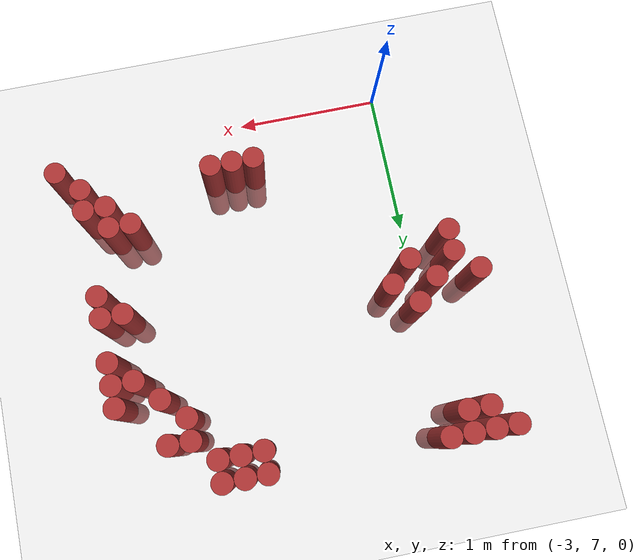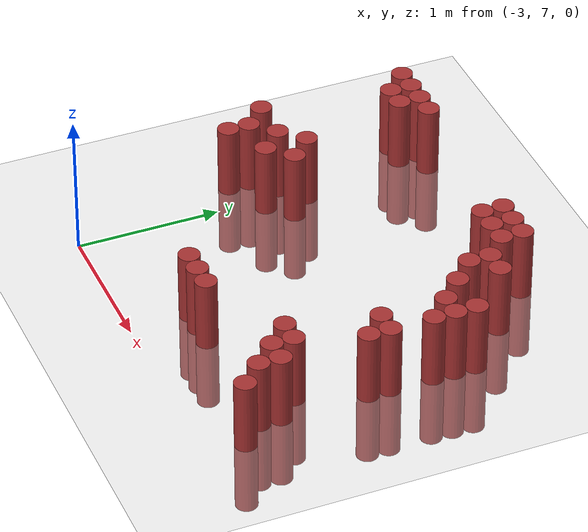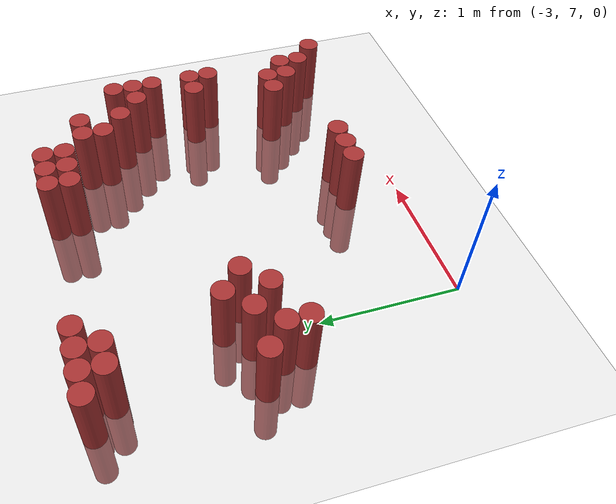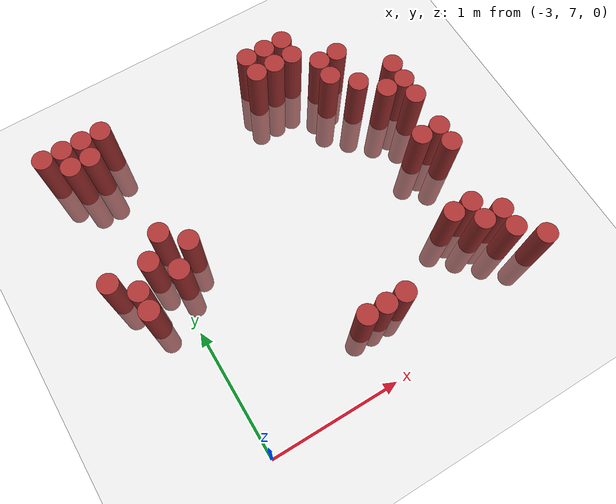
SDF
<sdf version="1.6">
 <world name="default">
  <model name="ground_plane">
   <static>1</static>
   <link name="link">
    <collision name="collision">
     <geometry><plane><normal>0 0 1</normal><size>100 100</size></plane></geometry>
     <surface><friction><ode><mu>100</mu><mu2>50</mu2></ode></friction></surface>
    </collision>
    <visual name="visual">
     <cast_shadows>0</cast_shadows>
     <geometry><plane><normal>0 0 1</normal><size>100 100</size></plane></geometry>
     <material>
      <script><uri>file://media/materials/scripts/gazebo.material</uri><name>Gazebo/Grey</name></script>
     </material>
    </visual>
   </link>
  </model>
  <model name="unit_cylinder_200">
   <static>1</static>
   <pose>-3.375000 8.475000 0.000000 0.000000 0.000000 0.000000</pose>
   <link name="link">
    <inertial>
     <mass>1</mass>
     <inertia><ixx>0.145833</ixx><ixy>0</ixy><ixz>0</ixz><iyy>0.145833</iyy><iyz>0</iyz><izz>0.125</izz></inertia>
    </inertial>
    <collision name="collision">
     <geometry><cylinder><radius>0.075000</radius><length>1</length></cylinder></geometry>
    </collision>
    <visual name="visual">
     <geometry><cylinder><radius>0.075000</radius><length>1</length></cylinder></geometry>
     <material>
      <ambient>0.648000 0.192000 0.192000 1</ambient>
      <diffuse>0.648000 0.192000 0.192000 1</diffuse>
     </material>
     <material>
      <script><name>Gazebo/Grey</name><uri>file://media/materials/scripts/gazebo.material</uri></script>
     </material>
    </visual>
    <sensor name="sensor_contact" type="contact"><contact><collision>collision</collision></contact></sensor>
   </link>
   <plugin filename="gz-sim-touchplugin-system" name="gz::sim::systems::TouchPlugin">
    <target>robot</target>
    <namespace>robot</namespace>
    <time>0.001</time>
    <enabled>true</enabled>
   </plugin>
  </model>
  <model name="unit_cylinder_201">
   <static>1</static>
   <pose>-3.375000 9.525000 0.000000 0.000000 0.000000 0.000000</pose>
   <link name="link">
    <inertial>
     <mass>1</mass>
     <inertia><ixx>0.145833</ixx><ixy>0</ixy><ixz>0</ixz><iyy>0.145833</iyy><iyz>0</iyz><izz>0.125</izz></inertia>
    </inertial>
    <collision name="collision">
     <geometry><cylinder><radius>0.075000</radius><length>1</length></cylinder></geometry>
    </collision>
    <visual name="visual">
     <geometry><cylinder><radius>0.075000</radius><length>1</length></cylinder></geometry>
     <material>
      <ambient>0.648000 0.192000 0.192000 1</ambient>
      <diffuse>0.648000 0.192000 0.192000 1</diffuse>
     </material>
     <material>
      <script><name>Gazebo/Grey</name><uri>file://media/materials/scripts/gazebo.material</uri></script>
     </material>
    </visual>
    <sensor name="sensor_contact" type="contact"><contact><collision>collision</collision></contact></sensor>
   </link>
   <plugin filename="gz-sim-touchplugin-system" name="gz::sim::systems::TouchPlugin">
    <target>robot</target>
    <namespace>robot</namespace>
    <time>0.001</time>
    <enabled>true</enabled>
   </plugin>
  </model>
  <model name="unit_cylinder_203">
   <static>1</static>
   <pose>-3.225000 8.175000 0.000000 0.000000 0.000000 0.000000</pose>
   <link name="link">
    <inertial>
     <mass>1</mass>
     <inertia><ixx>0.145833</ixx><ixy>0</ixy><ixz>0</ixz><iyy>0.145833</iyy><iyz>0</iyz><izz>0.125</izz></inertia>
    </inertial>
    <collision name="collision">
     <geometry><cylinder><radius>0.075000</radius><length>1</length></cylinder></geometry>
    </collision>
    <visual name="visual">
     <geometry><cylinder><radius>0.075000</radius><length>1</length></cylinder></geometry>
     <material>
      <ambient>0.648000 0.192000 0.192000 1</ambient>
      <diffuse>0.648000 0.192000 0.192000 1</diffuse>
     </material>
     <material>
      <script><name>Gazebo/Grey</name><uri>file://media/materials/scripts/gazebo.material</uri></script>
     </material>
    </visual>
    <sensor name="sensor_contact" type="contact"><contact><collision>collision</collision></contact></sensor>
   </link>
   <plugin filename="gz-sim-touchplugin-system" name="gz::sim::systems::TouchPlugin">
    <target>robot</target>
    <namespace>robot</namespace>
    <time>0.001</time>
    <enabled>true</enabled>
   </plugin>
  </model>
  <model name="unit_cylinder_204">
   <static>1</static>
   <pose>-3.225000 8.325000 0.000000 0.000000 0.000000 0.000000</pose>
   <link name="link">
    <inertial>
     <mass>1</mass>
     <inertia><ixx>0.145833</ixx><ixy>0</ixy><ixz>0</ixz><iyy>0.145833</iyy><iyz>0</iyz><izz>0.125</izz></inertia>
    </inertial>
    <collision name="collision">
     <geometry><cylinder><radius>0.075000</radius><length>1</length></cylinder></geometry>
    </collision>
    <visual name="visual">
     <geometry><cylinder><radius>0.075000</radius><length>1</length></cylinder></geometry>
     <material>
      <ambient>0.648000 0.192000 0.192000 1</ambient>
      <diffuse>0.648000 0.192000 0.192000 1</diffuse>
     </material>
     <material>
      <script><name>Gazebo/Grey</name><uri>file://media/materials/scripts/gazebo.material</uri></script>
     </material>
    </visual>
    <sensor name="sensor_contact" type="contact"><contact><collision>collision</collision></contact></sensor>
   </link>
   <plugin filename="gz-sim-touchplugin-system" name="gz::sim::systems::TouchPlugin">
    <target>robot</target>
    <namespace>robot</namespace>
    <time>0.001</time>
    <enabled>true</enabled>
   </plugin>
  </model>
  <model name="unit_cylinder_205">
   <static>1</static>
   <pose>-3.225000 9.375000 0.000000 0.000000 0.000000 0.000000</pose>
   <link name="link">
    <inertial>
     <mass>1</mass>
     <inertia><ixx>0.145833</ixx><ixy>0</ixy><ixz>0</ixz><iyy>0.145833</iyy><iyz>0</iyz><izz>0.125</izz></inertia>
    </inertial>
    <collision name="collision">
     <geometry><cylinder><radius>0.075000</radius><length>1</length></cylinder></geometry>
    </collision>
    <visual name="visual">
     <geometry><cylinder><radius>0.075000</radius><length>1</length></cylinder></geometry>
     <material>
      <ambient>0.648000 0.192000 0.192000 1</ambient>
      <diffuse>0.648000 0.192000 0.192000 1</diffuse>
     </material>
     <material>
      <script><name>Gazebo/Grey</name><uri>file://media/materials/scripts/gazebo.material</uri></script>
     </material>
    </visual>
    <sensor name="sensor_contact" type="contact"><contact><collision>collision</collision></contact></sensor>
   </link>
   <plugin filename="gz-sim-touchplugin-system" name="gz::sim::systems::TouchPlugin">
    <target>robot</target>
    <namespace>robot</namespace>
    <time>0.001</time>
    <enabled>true</enabled>
   </plugin>
  </model>
  <model name="unit_cylinder_206">
   <static>1</static>
   <pose>-3.225000 9.525000 0.000000 0.000000 0.000000 0.000000</pose>
   <link name="link">
    <inertial>
     <mass>1</mass>
     <inertia><ixx>0.145833</ixx><ixy>0</ixy><ixz>0</ixz><iyy>0.145833</iyy><iyz>0</iyz><izz>0.125</izz></inertia>
    </inertial>
    <collision name="collision">
     <geometry><cylinder><radius>0.075000</radius><length>1</length></cylinder></geometry>
    </collision>
    <visual name="visual">
     <geometry><cylinder><radius>0.075000</radius><length>1</length></cylinder></geometry>
     <material>
      <ambient>0.648000 0.192000 0.192000 1</ambient>
      <diffuse>0.648000 0.192000 0.192000 1</diffuse>
     </material>
     <material>
      <script><name>Gazebo/Grey</name><uri>file://media/materials/scripts/gazebo.material</uri></script>
     </material>
    </visual>
    <sensor name="sensor_contact" type="contact"><contact><collision>collision</collision></contact></sensor>
   </link>
   <plugin filename="gz-sim-touchplugin-system" name="gz::sim::systems::TouchPlugin">
    <target>robot</target>
    <namespace>robot</namespace>
    <time>0.001</time>
    <enabled>true</enabled>
   </plugin>
  </model>
  <model name="unit_cylinder_207">
   <static>1</static>
   <pose>-3.075000 8.475000 0.000000 0.000000 0.000000 0.000000</pose>
   <link name="link">
    <inertial>
     <mass>1</mass>
     <inertia><ixx>0.145833</ixx><ixy>0</ixy><ixz>0</ixz><iyy>0.145833</iyy><iyz>0</iyz><izz>0.125</izz></inertia>
    </inertial>
    <collision name="collision">
     <geometry><cylinder><radius>0.075000</radius><length>1</length></cylinder></geometry>
    </collision>
    <visual name="visual">
     <geometry><cylinder><radius>0.075000</radius><length>1</length></cylinder></geometry>
     <material>
      <ambient>0.648000 0.192000 0.192000 1</ambient>
      <diffuse>0.648000 0.192000 0.192000 1</diffuse>
     </material>
     <material>
      <script><name>Gazebo/Grey</name><uri>file://media/materials/scripts/gazebo.material</uri></script>
     </material>
    </visual>
    <sensor name="sensor_contact" type="contact"><contact><collision>collision</collision></contact></sensor>
   </link>
   <plugin filename="gz-sim-touchplugin-system" name="gz::sim::systems::TouchPlugin">
    <target>robot</target>
    <namespace>robot</namespace>
    <time>0.001</time>
    <enabled>true</enabled>
   </plugin>
  </model>
  <model name="unit_cylinder_208">
   <static>1</static>
   <pose>-3.075000 9.375000 0.000000 0.000000 0.000000 0.000000</pose>
   <link name="link">
    <inertial>
     <mass>1</mass>
     <inertia><ixx>0.145833</ixx><ixy>0</ixy><ixz>0</ixz><iyy>0.145833</iyy><iyz>0</iyz><izz>0.125</izz></inertia>
    </inertial>
    <collision name="collision">
     <geometry><cylinder><radius>0.075000</radius><length>1</length></cylinder></geometry>
    </collision>
    <visual name="visual">
     <geometry><cylinder><radius>0.075000</radius><length>1</length></cylinder></geometry>
     <material>
      <ambient>0.648000 0.192000 0.192000 1</ambient>
      <diffuse>0.648000 0.192000 0.192000 1</diffuse>
     </material>
     <material>
      <script><name>Gazebo/Grey</name><uri>file://media/materials/scripts/gazebo.material</uri></script>
     </material>
    </visual>
    <sensor name="sensor_contact" type="contact"><contact><collision>collision</collision></contact></sensor>
   </link>
   <plugin filename="gz-sim-touchplugin-system" name="gz::sim::systems::TouchPlugin">
    <target>robot</target>
    <namespace>robot</namespace>
    <time>0.001</time>
    <enabled>true</enabled>
   </plugin>
  </model>
  <model name="unit_cylinder_209">
   <static>1</static>
   <pose>-3.075000 9.525000 0.000000 0.000000 0.000000 0.000000</pose>
   <link name="link">
    <inertial>
     <mass>1</mass>
     <inertia><ixx>0.145833</ixx><ixy>0</ixy><ixz>0</ixz><iyy>0.145833</iyy><iyz>0</iyz><izz>0.125</izz></inertia>
    </inertial>
    <collision name="collision">
     <geometry><cylinder><radius>0.075000</radius><length>1</length></cylinder></geometry>
    </collision>
    <visual name="visual">
     <geometry><cylinder><radius>0.075000</radius><length>1</length></cylinder></geometry>
     <material>
      <ambient>0.648000 0.192000 0.192000 1</ambient>
      <diffuse>0.648000 0.192000 0.192000 1</diffuse>
     </material>
     <material>
      <script><name>Gazebo/Grey</name><uri>file://media/materials/scripts/gazebo.material</uri></script>
     </material>
    </visual>
    <sensor name="sensor_contact" type="contact"><contact><collision>collision</collision></contact></sensor>
   </link>
   <plugin filename="gz-sim-touchplugin-system" name="gz::sim::systems::TouchPlugin">
    <target>robot</target>
    <namespace>robot</namespace>
    <time>0.001</time>
    <enabled>true</enabled>
   </plugin>
  </model>
  <model name="unit_cylinder_210">
   <static>1</static>
   <pose>-2.925000 8.325000 0.000000 0.000000 0.000000 0.000000</pose>
   <link name="link">
    <inertial>
     <mass>1</mass>
     <inertia><ixx>0.145833</ixx><ixy>0</ixy><ixz>0</ixz><iyy>0.145833</iyy><iyz>0</iyz><izz>0.125</izz></inertia>
    </inertial>
    <collision name="collision">
     <geometry><cylinder><radius>0.075000</radius><length>1</length></cylinder></geometry>
    </collision>
    <visual name="visual">
     <geometry><cylinder><radius>0.075000</radius><length>1</length></cylinder></geometry>
     <material>
      <ambient>0.648000 0.192000 0.192000 1</ambient>
      <diffuse>0.648000 0.192000 0.192000 1</diffuse>
     </material>
     <material>
      <script><name>Gazebo/Grey</name><uri>file://media/materials/scripts/gazebo.material</uri></script>
     </material>
    </visual>
    <sensor name="sensor_contact" type="contact"><contact><collision>collision</collision></contact></sensor>
   </link>
   <plugin filename="gz-sim-touchplugin-system" name="gz::sim::systems::TouchPlugin">
    <target>robot</target>
    <namespace>robot</namespace>
    <time>0.001</time>
    <enabled>true</enabled>
   </plugin>
  </model>
  <model name="unit_cylinder_211">
   <static>1</static>
   <pose>-2.925000 8.625000 0.000000 0.000000 0.000000 0.000000</pose>
   <link name="link">
    <inertial>
     <mass>1</mass>
     <inertia><ixx>0.145833</ixx><ixy>0</ixy><ixz>0</ixz><iyy>0.145833</iyy><iyz>0</iyz><izz>0.125</izz></inertia>
    </inertial>
    <collision name="collision">
     <geometry><cylinder><radius>0.075000</radius><length>1</length></cylinder></geometry>
    </collision>
    <visual name="visual">
     <geometry><cylinder><radius>0.075000</radius><length>1</length></cylinder></geometry>
     <material>
      <ambient>0.648000 0.192000 0.192000 1</ambient>
      <diffuse>0.648000 0.192000 0.192000 1</diffuse>
     </material>
     <material>
      <script><name>Gazebo/Grey</name><uri>file://media/materials/scripts/gazebo.material</uri></script>
     </material>
    </visual>
    <sensor name="sensor_contact" type="contact"><contact><collision>collision</collision></contact></sensor>
   </link>
   <plugin filename="gz-sim-touchplugin-system" name="gz::sim::systems::TouchPlugin">
    <target>robot</target>
    <namespace>robot</namespace>
    <time>0.001</time>
    <enabled>true</enabled>
   </plugin>
  </model>
  <model name="unit_cylinder_212">
   <static>1</static>
   <pose>-2.925000 9.525000 0.000000 0.000000 0.000000 0.000000</pose>
   <link name="link">
    <inertial>
     <mass>1</mass>
     <inertia><ixx>0.145833</ixx><ixy>0</ixy><ixz>0</ixz><iyy>0.145833</iyy><iyz>0</iyz><izz>0.125</izz></inertia>
    </inertial>
    <collision name="collision">
     <geometry><cylinder><radius>0.075000</radius><length>1</length></cylinder></geometry>
    </collision>
    <visual name="visual">
     <geometry><cylinder><radius>0.075000</radius><length>1</length></cylinder></geometry>
     <material>
      <ambient>0.648000 0.192000 0.192000 1</ambient>
      <diffuse>0.648000 0.192000 0.192000 1</diffuse>
     </material>
     <material>
      <script><name>Gazebo/Grey</name><uri>file://media/materials/scripts/gazebo.material</uri></script>
     </material>
    </visual>
    <sensor name="sensor_contact" type="contact"><contact><collision>collision</collision></contact></sensor>
   </link>
   <plugin filename="gz-sim-touchplugin-system" name="gz::sim::systems::TouchPlugin">
    <target>robot</target>
    <namespace>robot</namespace>
    <time>0.001</time>
    <enabled>true</enabled>
   </plugin>
  </model>
  <model name="unit_cylinder_213">
   <static>1</static>
   <pose>-2.775000 8.475000 0.000000 0.000000 0.000000 0.000000</pose>
   <link name="link">
    <inertial>
     <mass>1</mass>
     <inertia><ixx>0.145833</ixx><ixy>0</ixy><ixz>0</ixz><iyy>0.145833</iyy><iyz>0</iyz><izz>0.125</izz></inertia>
    </inertial>
    <collision name="collision">
     <geometry><cylinder><radius>0.075000</radius><length>1</length></cylinder></geometry>
    </collision>
    <visual name="visual">
     <geometry><cylinder><radius>0.075000</radius><length>1</length></cylinder></geometry>
     <material>
      <ambient>0.648000 0.192000 0.192000 1</ambient>
      <diffuse>0.648000 0.192000 0.192000 1</diffuse>
     </material>
     <material>
      <script><name>Gazebo/Grey</name><uri>file://media/materials/scripts/gazebo.material</uri></script>
     </material>
    </visual>
    <sensor name="sensor_contact" type="contact"><contact><collision>collision</collision></contact></sensor>
   </link>
   <plugin filename="gz-sim-touchplugin-system" name="gz::sim::systems::TouchPlugin">
    <target>robot</target>
    <namespace>robot</namespace>
    <time>0.001</time>
    <enabled>true</enabled>
   </plugin>
  </model>
  <model name="unit_cylinder_225">
   <static>1</static>
   <pose>-2.025000 7.425000 0.000000 0.000000 0.000000 0.000000</pose>
   <link name="link">
    <inertial>
     <mass>1</mass>
     <inertia><ixx>0.145833</ixx><ixy>0</ixy><ixz>0</ixz><iyy>0.145833</iyy><iyz>0</iyz><izz>0.125</izz></inertia>
    </inertial>
    <collision name="collision">
     <geometry><cylinder><radius>0.075000</radius><length>1</length></cylinder></geometry>
    </collision>
    <visual name="visual">
     <geometry><cylinder><radius>0.075000</radius><length>1</length></cylinder></geometry>
     <material>
      <ambient>0.648000 0.192000 0.192000 1</ambient>
      <diffuse>0.648000 0.192000 0.192000 1</diffuse>
     </material>
     <material>
      <script><name>Gazebo/Grey</name><uri>file://media/materials/scripts/gazebo.material</uri></script>
     </material>
    </visual>
    <sensor name="sensor_contact" type="contact"><contact><collision>collision</collision></contact></sensor>
   </link>
   <plugin filename="gz-sim-touchplugin-system" name="gz::sim::systems::TouchPlugin">
    <target>robot</target>
    <namespace>robot</namespace>
    <time>0.001</time>
    <enabled>true</enabled>
   </plugin>
  </model>
  <model name="unit_cylinder_230">
   <static>1</static>
   <pose>-1.875000 7.425000 0.000000 0.000000 0.000000 0.000000</pose>
   <link name="link">
    <inertial>
     <mass>1</mass>
     <inertia><ixx>0.145833</ixx><ixy>0</ixy><ixz>0</ixz><iyy>0.145833</iyy><iyz>0</iyz><izz>0.125</izz></inertia>
    </inertial>
    <collision name="collision">
     <geometry><cylinder><radius>0.075000</radius><length>1</length></cylinder></geometry>
    </collision>
    <visual name="visual">
     <geometry><cylinder><radius>0.075000</radius><length>1</length></cylinder></geometry>
     <material>
      <ambient>0.648000 0.192000 0.192000 1</ambient>
      <diffuse>0.648000 0.192000 0.192000 1</diffuse>
     </material>
     <material>
      <script><name>Gazebo/Grey</name><uri>file://media/materials/scripts/gazebo.material</uri></script>
     </material>
    </visual>
    <sensor name="sensor_contact" type="contact"><contact><collision>collision</collision></contact></sensor>
   </link>
   <plugin filename="gz-sim-touchplugin-system" name="gz::sim::systems::TouchPlugin">
    <target>robot</target>
    <namespace>robot</namespace>
    <time>0.001</time>
    <enabled>true</enabled>
   </plugin>
  </model>
  <model name="unit_cylinder_235">
   <static>1</static>
   <pose>-1.725000 7.425000 0.000000 0.000000 0.000000 0.000000</pose>
   <link name="link">
    <inertial>
     <mass>1</mass>
     <inertia><ixx>0.145833</ixx><ixy>0</ixy><ixz>0</ixz><iyy>0.145833</iyy><iyz>0</iyz><izz>0.125</izz></inertia>
    </inertial>
    <collision name="collision">
     <geometry><cylinder><radius>0.075000</radius><length>1</length></cylinder></geometry>
    </collision>
    <visual name="visual">
     <geometry><cylinder><radius>0.075000</radius><length>1</length></cylinder></geometry>
     <material>
      <ambient>0.648000 0.192000 0.192000 1</ambient>
      <diffuse>0.648000 0.192000 0.192000 1</diffuse>
     </material>
     <material>
      <script><name>Gazebo/Grey</name><uri>file://media/materials/scripts/gazebo.material</uri></script>
     </material>
    </visual>
    <sensor name="sensor_contact" type="contact"><contact><collision>collision</collision></contact></sensor>
   </link>
   <plugin filename="gz-sim-touchplugin-system" name="gz::sim::systems::TouchPlugin">
    <target>robot</target>
    <namespace>robot</namespace>
    <time>0.001</time>
    <enabled>true</enabled>
   </plugin>
  </model>
  <model name="unit_cylinder_236">
   <static>1</static>
   <pose>-1.725000 9.375000 0.000000 0.000000 0.000000 0.000000</pose>
   <link name="link">
    <inertial>
     <mass>1</mass>
     <inertia><ixx>0.145833</ixx><ixy>0</ixy><ixz>0</ixz><iyy>0.145833</iyy><iyz>0</iyz><izz>0.125</izz></inertia>
    </inertial>
    <collision name="collision">
     <geometry><cylinder><radius>0.075000</radius><length>1</length></cylinder></geometry>
    </collision>
    <visual name="visual">
     <geometry><cylinder><radius>0.075000</radius><length>1</length></cylinder></geometry>
     <material>
      <ambient>0.648000 0.192000 0.192000 1</ambient>
      <diffuse>0.648000 0.192000 0.192000 1</diffuse>
     </material>
     <material>
      <script><name>Gazebo/Grey</name><uri>file://media/materials/scripts/gazebo.material</uri></script>
     </material>
    </visual>
    <sensor name="sensor_contact" type="contact"><contact><collision>collision</collision></contact></sensor>
   </link>
   <plugin filename="gz-sim-touchplugin-system" name="gz::sim::systems::TouchPlugin">
    <target>robot</target>
    <namespace>robot</namespace>
    <time>0.001</time>
    <enabled>true</enabled>
   </plugin>
  </model>
  <model name="unit_cylinder_237">
   <static>1</static>
   <pose>-1.725000 9.525000 0.000000 0.000000 0.000000 0.000000</pose>
   <link name="link">
    <inertial>
     <mass>1</mass>
     <inertia><ixx>0.145833</ixx><ixy>0</ixy><ixz>0</ixz><iyy>0.145833</iyy><iyz>0</iyz><izz>0.125</izz></inertia>
    </inertial>
    <collision name="collision">
     <geometry><cylinder><radius>0.075000</radius><length>1</length></cylinder></geometry>
    </collision>
    <visual name="visual">
     <geometry><cylinder><radius>0.075000</radius><length>1</length></cylinder></geometry>
     <material>
      <ambient>0.648000 0.192000 0.192000 1</ambient>
      <diffuse>0.648000 0.192000 0.192000 1</diffuse>
     </material>
     <material>
      <script><name>Gazebo/Grey</name><uri>file://media/materials/scripts/gazebo.material</uri></script>
     </material>
    </visual>
    <sensor name="sensor_contact" type="contact"><contact><collision>collision</collision></contact></sensor>
   </link>
   <plugin filename="gz-sim-touchplugin-system" name="gz::sim::systems::TouchPlugin">
    <target>robot</target>
    <namespace>robot</namespace>
    <time>0.001</time>
    <enabled>true</enabled>
   </plugin>
  </model>
  <model name="unit_cylinder_241">
   <static>1</static>
   <pose>-1.575000 9.375000 0.000000 0.000000 0.000000 0.000000</pose>
   <link name="link">
    <inertial>
     <mass>1</mass>
     <inertia><ixx>0.145833</ixx><ixy>0</ixy><ixz>0</ixz><iyy>0.145833</iyy><iyz>0</iyz><izz>0.125</izz></inertia>
    </inertial>
    <collision name="collision">
     <geometry><cylinder><radius>0.075000</radius><length>1</length></cylinder></geometry>
    </collision>
    <visual name="visual">
     <geometry><cylinder><radius>0.075000</radius><length>1</length></cylinder></geometry>
     <material>
      <ambient>0.648000 0.192000 0.192000 1</ambient>
      <diffuse>0.648000 0.192000 0.192000 1</diffuse>
     </material>
     <material>
      <script><name>Gazebo/Grey</name><uri>file://media/materials/scripts/gazebo.material</uri></script>
     </material>
    </visual>
    <sensor name="sensor_contact" type="contact"><contact><collision>collision</collision></contact></sensor>
   </link>
   <plugin filename="gz-sim-touchplugin-system" name="gz::sim::systems::TouchPlugin">
    <target>robot</target>
    <namespace>robot</namespace>
    <time>0.001</time>
    <enabled>true</enabled>
   </plugin>
  </model>
  <model name="unit_cylinder_242">
   <static>1</static>
   <pose>-1.575000 9.525000 0.000000 0.000000 0.000000 0.000000</pose>
   <link name="link">
    <inertial>
     <mass>1</mass>
     <inertia><ixx>0.145833</ixx><ixy>0</ixy><ixz>0</ixz><iyy>0.145833</iyy><iyz>0</iyz><izz>0.125</izz></inertia>
    </inertial>
    <collision name="collision">
     <geometry><cylinder><radius>0.075000</radius><length>1</length></cylinder></geometry>
    </collision>
    <visual name="visual">
     <geometry><cylinder><radius>0.075000</radius><length>1</length></cylinder></geometry>
     <material>
      <ambient>0.648000 0.192000 0.192000 1</ambient>
      <diffuse>0.648000 0.192000 0.192000 1</diffuse>
     </material>
     <material>
      <script><name>Gazebo/Grey</name><uri>file://media/materials/scripts/gazebo.material</uri></script>
     </material>
    </visual>
    <sensor name="sensor_contact" type="contact"><contact><collision>collision</collision></contact></sensor>
   </link>
   <plugin filename="gz-sim-touchplugin-system" name="gz::sim::systems::TouchPlugin">
    <target>robot</target>
    <namespace>robot</namespace>
    <time>0.001</time>
    <enabled>true</enabled>
   </plugin>
  </model>
  <model name="unit_cylinder_246">
   <static>1</static>
   <pose>-1.425000 9.375000 0.000000 0.000000 0.000000 0.000000</pose>
   <link name="link">
    <inertial>
     <mass>1</mass>
     <inertia><ixx>0.145833</ixx><ixy>0</ixy><ixz>0</ixz><iyy>0.145833</iyy><iyz>0</iyz><izz>0.125</izz></inertia>
    </inertial>
    <collision name="collision">
     <geometry><cylinder><radius>0.075000</radius><length>1</length></cylinder></geometry>
    </collision>
    <visual name="visual">
     <geometry><cylinder><radius>0.075000</radius><length>1</length></cylinder></geometry>
     <material>
      <ambient>0.648000 0.192000 0.192000 1</ambient>
      <diffuse>0.648000 0.192000 0.192000 1</diffuse>
     </material>
     <material>
      <script><name>Gazebo/Grey</name><uri>file://media/materials/scripts/gazebo.material</uri></script>
     </material>
    </visual>
    <sensor name="sensor_contact" type="contact"><contact><collision>collision</collision></contact></sensor>
   </link>
   <plugin filename="gz-sim-touchplugin-system" name="gz::sim::systems::TouchPlugin">
    <target>robot</target>
    <namespace>robot</namespace>
    <time>0.001</time>
    <enabled>true</enabled>
   </plugin>
  </model>
  <model name="unit_cylinder_247">
   <static>1</static>
   <pose>-1.425000 9.525000 0.000000 0.000000 0.000000 0.000000</pose>
   <link name="link">
    <inertial>
     <mass>1</mass>
     <inertia><ixx>0.145833</ixx><ixy>0</ixy><ixz>0</ixz><iyy>0.145833</iyy><iyz>0</iyz><izz>0.125</izz></inertia>
    </inertial>
    <collision name="collision">
     <geometry><cylinder><radius>0.075000</radius><length>1</length></cylinder></geometry>
    </collision>
    <visual name="visual">
     <geometry><cylinder><radius>0.075000</radius><length>1</length></cylinder></geometry>
     <material>
      <ambient>0.648000 0.192000 0.192000 1</ambient>
      <diffuse>0.648000 0.192000 0.192000 1</diffuse>
     </material>
     <material>
      <script><name>Gazebo/Grey</name><uri>file://media/materials/scripts/gazebo.material</uri></script>
     </material>
    </visual>
    <sensor name="sensor_contact" type="contact"><contact><collision>collision</collision></contact></sensor>
   </link>
   <plugin filename="gz-sim-touchplugin-system" name="gz::sim::systems::TouchPlugin">
    <target>robot</target>
    <namespace>robot</namespace>
    <time>0.001</time>
    <enabled>true</enabled>
   </plugin>
  </model>
  <model name="unit_cylinder_251">
   <static>1</static>
   <pose>-1.275000 9.075000 0.000000 0.000000 0.000000 0.000000</pose>
   <link name="link">
    <inertial>
     <mass>1</mass>
     <inertia><ixx>0.145833</ixx><ixy>0</ixy><ixz>0</ixz><iyy>0.145833</iyy><iyz>0</iyz><izz>0.125</izz></inertia>
    </inertial>
    <collision name="collision">
     <geometry><cylinder><radius>0.075000</radius><length>1</length></cylinder></geometry>
    </collision>
    <visual name="visual">
     <geometry><cylinder><radius>0.075000</radius><length>1</length></cylinder></geometry>
     <material>
      <ambient>0.648000 0.192000 0.192000 1</ambient>
      <diffuse>0.648000 0.192000 0.192000 1</diffuse>
     </material>
     <material>
      <script><name>Gazebo/Grey</name><uri>file://media/materials/scripts/gazebo.material</uri></script>
     </material>
    </visual>
    <sensor name="sensor_contact" type="contact"><contact><collision>collision</collision></contact></sensor>
   </link>
   <plugin filename="gz-sim-touchplugin-system" name="gz::sim::systems::TouchPlugin">
    <target>robot</target>
    <namespace>robot</namespace>
    <time>0.001</time>
    <enabled>true</enabled>
   </plugin>
  </model>
  <model name="unit_cylinder_252">
   <static>1</static>
   <pose>-1.275000 9.225000 0.000000 0.000000 0.000000 0.000000</pose>
   <link name="link">
    <inertial>
     <mass>1</mass>
     <inertia><ixx>0.145833</ixx><ixy>0</ixy><ixz>0</ixz><iyy>0.145833</iyy><iyz>0</iyz><izz>0.125</izz></inertia>
    </inertial>
    <collision name="collision">
     <geometry><cylinder><radius>0.075000</radius><length>1</length></cylinder></geometry>
    </collision>
    <visual name="visual">
     <geometry><cylinder><radius>0.075000</radius><length>1</length></cylinder></geometry>
     <material>
      <ambient>0.648000 0.192000 0.192000 1</ambient>
      <diffuse>0.648000 0.192000 0.192000 1</diffuse>
     </material>
     <material>
      <script><name>Gazebo/Grey</name><uri>file://media/materials/scripts/gazebo.material</uri></script>
     </material>
    </visual>
    <sensor name="sensor_contact" type="contact"><contact><collision>collision</collision></contact></sensor>
   </link>
   <plugin filename="gz-sim-touchplugin-system" name="gz::sim::systems::TouchPlugin">
    <target>robot</target>
    <namespace>robot</namespace>
    <time>0.001</time>
    <enabled>true</enabled>
   </plugin>
  </model>
  <model name="unit_cylinder_254">
   <static>1</static>
   <pose>-1.125000 7.725000 0.000000 0.000000 0.000000 0.000000</pose>
   <link name="link">
    <inertial>
     <mass>1</mass>
     <inertia><ixx>0.145833</ixx><ixy>0</ixy><ixz>0</ixz><iyy>0.145833</iyy><iyz>0</iyz><izz>0.125</izz></inertia>
    </inertial>
    <collision name="collision">
     <geometry><cylinder><radius>0.075000</radius><length>1</length></cylinder></geometry>
    </collision>
    <visual name="visual">
     <geometry><cylinder><radius>0.075000</radius><length>1</length></cylinder></geometry>
     <material>
      <ambient>0.648000 0.192000 0.192000 1</ambient>
      <diffuse>0.648000 0.192000 0.192000 1</diffuse>
     </material>
     <material>
      <script><name>Gazebo/Grey</name><uri>file://media/materials/scripts/gazebo.material</uri></script>
     </material>
    </visual>
    <sensor name="sensor_contact" type="contact"><contact><collision>collision</collision></contact></sensor>
   </link>
   <plugin filename="gz-sim-touchplugin-system" name="gz::sim::systems::TouchPlugin">
    <target>robot</target>
    <namespace>robot</namespace>
    <time>0.001</time>
    <enabled>true</enabled>
   </plugin>
  </model>
  <model name="unit_cylinder_255">
   <static>1</static>
   <pose>-1.125000 8.925000 0.000000 0.000000 0.000000 0.000000</pose>
   <link name="link">
    <inertial>
     <mass>1</mass>
     <inertia><ixx>0.145833</ixx><ixy>0</ixy><ixz>0</ixz><iyy>0.145833</iyy><iyz>0</iyz><izz>0.125</izz></inertia>
    </inertial>
    <collision name="collision">
     <geometry><cylinder><radius>0.075000</radius><length>1</length></cylinder></geometry>
    </collision>
    <visual name="visual">
     <geometry><cylinder><radius>0.075000</radius><length>1</length></cylinder></geometry>
     <material>
      <ambient>0.648000 0.192000 0.192000 1</ambient>
      <diffuse>0.648000 0.192000 0.192000 1</diffuse>
     </material>
     <material>
      <script><name>Gazebo/Grey</name><uri>file://media/materials/scripts/gazebo.material</uri></script>
     </material>
    </visual>
    <sensor name="sensor_contact" type="contact"><contact><collision>collision</collision></contact></sensor>
   </link>
   <plugin filename="gz-sim-touchplugin-system" name="gz::sim::systems::TouchPlugin">
    <target>robot</target>
    <namespace>robot</namespace>
    <time>0.001</time>
    <enabled>true</enabled>
   </plugin>
  </model>
  <model name="unit_cylinder_256">
   <static>1</static>
   <pose>-1.125000 9.225000 0.000000 0.000000 0.000000 0.000000</pose>
   <link name="link">
    <inertial>
     <mass>1</mass>
     <inertia><ixx>0.145833</ixx><ixy>0</ixy><ixz>0</ixz><iyy>0.145833</iyy><iyz>0</iyz><izz>0.125</izz></inertia>
    </inertial>
    <collision name="collision">
     <geometry><cylinder><radius>0.075000</radius><length>1</length></cylinder></geometry>
    </collision>
    <visual name="visual">
     <geometry><cylinder><radius>0.075000</radius><length>1</length></cylinder></geometry>
     <material>
      <ambient>0.648000 0.192000 0.192000 1</ambient>
      <diffuse>0.648000 0.192000 0.192000 1</diffuse>
     </material>
     <material>
      <script><name>Gazebo/Grey</name><uri>file://media/materials/scripts/gazebo.material</uri></script>
     </material>
    </visual>
    <sensor name="sensor_contact" type="contact"><contact><collision>collision</collision></contact></sensor>
   </link>
   <plugin filename="gz-sim-touchplugin-system" name="gz::sim::systems::TouchPlugin">
    <target>robot</target>
    <namespace>robot</namespace>
    <time>0.001</time>
    <enabled>true</enabled>
   </plugin>
  </model>
  <model name="unit_cylinder_259">
   <static>1</static>
   <pose>-0.975000 7.575000 0.000000 0.000000 0.000000 0.000000</pose>
   <link name="link">
    <inertial>
     <mass>1</mass>
     <inertia><ixx>0.145833</ixx><ixy>0</ixy><ixz>0</ixz><iyy>0.145833</iyy><iyz>0</iyz><izz>0.125</izz></inertia>
    </inertial>
    <collision name="collision">
     <geometry><cylinder><radius>0.075000</radius><length>1</length></cylinder></geometry>
    </collision>
    <visual name="visual">
     <geometry><cylinder><radius>0.075000</radius><length>1</length></cylinder></geometry>
     <material>
      <ambient>0.648000 0.192000 0.192000 1</ambient>
      <diffuse>0.648000 0.192000 0.192000 1</diffuse>
     </material>
     <material>
      <script><name>Gazebo/Grey</name><uri>file://media/materials/scripts/gazebo.material</uri></script>
     </material>
    </visual>
    <sensor name="sensor_contact" type="contact"><contact><collision>collision</collision></contact></sensor>
   </link>
   <plugin filename="gz-sim-touchplugin-system" name="gz::sim::systems::TouchPlugin">
    <target>robot</target>
    <namespace>robot</namespace>
    <time>0.001</time>
    <enabled>true</enabled>
   </plugin>
  </model>
  <model name="unit_cylinder_260">
   <static>1</static>
   <pose>-0.975000 7.725000 0.000000 0.000000 0.000000 0.000000</pose>
   <link name="link">
    <inertial>
     <mass>1</mass>
     <inertia><ixx>0.145833</ixx><ixy>0</ixy><ixz>0</ixz><iyy>0.145833</iyy><iyz>0</iyz><izz>0.125</izz></inertia>
    </inertial>
    <collision name="collision">
     <geometry><cylinder><radius>0.075000</radius><length>1</length></cylinder></geometry>
    </collision>
    <visual name="visual">
     <geometry><cylinder><radius>0.075000</radius><length>1</length></cylinder></geometry>
     <material>
      <ambient>0.648000 0.192000 0.192000 1</ambient>
      <diffuse>0.648000 0.192000 0.192000 1</diffuse>
     </material>
     <material>
      <script><name>Gazebo/Grey</name><uri>file://media/materials/scripts/gazebo.material</uri></script>
     </material>
    </visual>
    <sensor name="sensor_contact" type="contact"><contact><collision>collision</collision></contact></sensor>
   </link>
   <plugin filename="gz-sim-touchplugin-system" name="gz::sim::systems::TouchPlugin">
    <target>robot</target>
    <namespace>robot</namespace>
    <time>0.001</time>
    <enabled>true</enabled>
   </plugin>
  </model>
  <model name="unit_cylinder_261">
   <static>1</static>
   <pose>-0.975000 8.325000 0.000000 0.000000 0.000000 0.000000</pose>
   <link name="link">
    <inertial>
     <mass>1</mass>
     <inertia><ixx>0.145833</ixx><ixy>0</ixy><ixz>0</ixz><iyy>0.145833</iyy><iyz>0</iyz><izz>0.125</izz></inertia>
    </inertial>
    <collision name="collision">
     <geometry><cylinder><radius>0.075000</radius><length>1</length></cylinder></geometry>
    </collision>
    <visual name="visual">
     <geometry><cylinder><radius>0.075000</radius><length>1</length></cylinder></geometry>
     <material>
      <ambient>0.648000 0.192000 0.192000 1</ambient>
      <diffuse>0.648000 0.192000 0.192000 1</diffuse>
     </material>
     <material>
      <script><name>Gazebo/Grey</name><uri>file://media/materials/scripts/gazebo.material</uri></script>
     </material>
    </visual>
    <sensor name="sensor_contact" type="contact"><contact><collision>collision</collision></contact></sensor>
   </link>
   <plugin filename="gz-sim-touchplugin-system" name="gz::sim::systems::TouchPlugin">
    <target>robot</target>
    <namespace>robot</namespace>
    <time>0.001</time>
    <enabled>true</enabled>
   </plugin>
  </model>
  <model name="unit_cylinder_262">
   <static>1</static>
   <pose>-0.975000 8.775000 0.000000 0.000000 0.000000 0.000000</pose>
   <link name="link">
    <inertial>
     <mass>1</mass>
     <inertia><ixx>0.145833</ixx><ixy>0</ixy><ixz>0</ixz><iyy>0.145833</iyy><iyz>0</iyz><izz>0.125</izz></inertia>
    </inertial>
    <collision name="collision">
     <geometry><cylinder><radius>0.075000</radius><length>1</length></cylinder></geometry>
    </collision>
    <visual name="visual">
     <geometry><cylinder><radius>0.075000</radius><length>1</length></cylinder></geometry>
     <material>
      <ambient>0.648000 0.192000 0.192000 1</ambient>
      <diffuse>0.648000 0.192000 0.192000 1</diffuse>
     </material>
     <material>
      <script><name>Gazebo/Grey</name><uri>file://media/materials/scripts/gazebo.material</uri></script>
     </material>
    </visual>
    <sensor name="sensor_contact" type="contact"><contact><collision>collision</collision></contact></sensor>
   </link>
   <plugin filename="gz-sim-touchplugin-system" name="gz::sim::systems::TouchPlugin">
    <target>robot</target>
    <namespace>robot</namespace>
    <time>0.001</time>
    <enabled>true</enabled>
   </plugin>
  </model>
  <model name="unit_cylinder_268">
   <static>1</static>
   <pose>-0.825000 7.425000 0.000000 0.000000 0.000000 0.000000</pose>
   <link name="link">
    <inertial>
     <mass>1</mass>
     <inertia><ixx>0.145833</ixx><ixy>0</ixy><ixz>0</ixz><iyy>0.145833</iyy><iyz>0</iyz><izz>0.125</izz></inertia>
    </inertial>
    <collision name="collision">
     <geometry><cylinder><radius>0.075000</radius><length>1</length></cylinder></geometry>
    </collision>
    <visual name="visual">
     <geometry><cylinder><radius>0.075000</radius><length>1</length></cylinder></geometry>
     <material>
      <ambient>0.648000 0.192000 0.192000 1</ambient>
      <diffuse>0.648000 0.192000 0.192000 1</diffuse>
     </material>
     <material>
      <script><name>Gazebo/Grey</name><uri>file://media/materials/scripts/gazebo.material</uri></script>
     </material>
    </visual>
    <sensor name="sensor_contact" type="contact"><contact><collision>collision</collision></contact></sensor>
   </link>
   <plugin filename="gz-sim-touchplugin-system" name="gz::sim::systems::TouchPlugin">
    <target>robot</target>
    <namespace>robot</namespace>
    <time>0.001</time>
    <enabled>true</enabled>
   </plugin>
  </model>
  <model name="unit_cylinder_269">
   <static>1</static>
   <pose>-0.825000 7.575000 0.000000 0.000000 0.000000 0.000000</pose>
   <link name="link">
    <inertial>
     <mass>1</mass>
     <inertia><ixx>0.145833</ixx><ixy>0</ixy><ixz>0</ixz><iyy>0.145833</iyy><iyz>0</iyz><izz>0.125</izz></inertia>
    </inertial>
    <collision name="collision">
     <geometry><cylinder><radius>0.075000</radius><length>1</length></cylinder></geometry>
    </collision>
    <visual name="visual">
     <geometry><cylinder><radius>0.075000</radius><length>1</length></cylinder></geometry>
     <material>
      <ambient>0.648000 0.192000 0.192000 1</ambient>
      <diffuse>0.648000 0.192000 0.192000 1</diffuse>
     </material>
     <material>
      <script><name>Gazebo/Grey</name><uri>file://media/materials/scripts/gazebo.material</uri></script>
     </material>
    </visual>
    <sensor name="sensor_contact" type="contact"><contact><collision>collision</collision></contact></sensor>
   </link>
   <plugin filename="gz-sim-touchplugin-system" name="gz::sim::systems::TouchPlugin">
    <target>robot</target>
    <namespace>robot</namespace>
    <time>0.001</time>
    <enabled>true</enabled>
   </plugin>
  </model>
  <model name="unit_cylinder_270">
   <static>1</static>
   <pose>-0.825000 8.175000 0.000000 0.000000 0.000000 0.000000</pose>
   <link name="link">
    <inertial>
     <mass>1</mass>
     <inertia><ixx>0.145833</ixx><ixy>0</ixy><ixz>0</ixz><iyy>0.145833</iyy><iyz>0</iyz><izz>0.125</izz></inertia>
    </inertial>
    <collision name="collision">
     <geometry><cylinder><radius>0.075000</radius><length>1</length></cylinder></geometry>
    </collision>
    <visual name="visual">
     <geometry><cylinder><radius>0.075000</radius><length>1</length></cylinder></geometry>
     <material>
      <ambient>0.648000 0.192000 0.192000 1</ambient>
      <diffuse>0.648000 0.192000 0.192000 1</diffuse>
     </material>
     <material>
      <script><name>Gazebo/Grey</name><uri>file://media/materials/scripts/gazebo.material</uri></script>
     </material>
    </visual>
    <sensor name="sensor_contact" type="contact"><contact><collision>collision</collision></contact></sensor>
   </link>
   <plugin filename="gz-sim-touchplugin-system" name="gz::sim::systems::TouchPlugin">
    <target>robot</target>
    <namespace>robot</namespace>
    <time>0.001</time>
    <enabled>true</enabled>
   </plugin>
  </model>
  <model name="unit_cylinder_271">
   <static>1</static>
   <pose>-0.825000 8.325000 0.000000 0.000000 0.000000 0.000000</pose>
   <link name="link">
    <inertial>
     <mass>1</mass>
     <inertia><ixx>0.145833</ixx><ixy>0</ixy><ixz>0</ixz><iyy>0.145833</iyy><iyz>0</iyz><izz>0.125</izz></inertia>
    </inertial>
    <collision name="collision">
     <geometry><cylinder><radius>0.075000</radius><length>1</length></cylinder></geometry>
    </collision>
    <visual name="visual">
     <geometry><cylinder><radius>0.075000</radius><length>1</length></cylinder></geometry>
     <material>
      <ambient>0.648000 0.192000 0.192000 1</ambient>
      <diffuse>0.648000 0.192000 0.192000 1</diffuse>
     </material>
     <material>
      <script><name>Gazebo/Grey</name><uri>file://media/materials/scripts/gazebo.material</uri></script>
     </material>
    </visual>
    <sensor name="sensor_contact" type="contact"><contact><collision>collision</collision></contact></sensor>
   </link>
   <plugin filename="gz-sim-touchplugin-system" name="gz::sim::systems::TouchPlugin">
    <target>robot</target>
    <namespace>robot</namespace>
    <time>0.001</time>
    <enabled>true</enabled>
   </plugin>
  </model>
  <model name="unit_cylinder_272">
   <static>1</static>
   <pose>-0.825000 8.625000 0.000000 0.000000 0.000000 0.000000</pose>
   <link name="link">
    <inertial>
     <mass>1</mass>
     <inertia><ixx>0.145833</ixx><ixy>0</ixy><ixz>0</ixz><iyy>0.145833</iyy><iyz>0</iyz><izz>0.125</izz></inertia>
    </inertial>
    <collision name="collision">
     <geometry><cylinder><radius>0.075000</radius><length>1</length></cylinder></geometry>
    </collision>
    <visual name="visual">
     <geometry><cylinder><radius>0.075000</radius><length>1</length></cylinder></geometry>
     <material>
      <ambient>0.648000 0.192000 0.192000 1</ambient>
      <diffuse>0.648000 0.192000 0.192000 1</diffuse>
     </material>
     <material>
      <script><name>Gazebo/Grey</name><uri>file://media/materials/scripts/gazebo.material</uri></script>
     </material>
    </visual>
    <sensor name="sensor_contact" type="contact"><contact><collision>collision</collision></contact></sensor>
   </link>
   <plugin filename="gz-sim-touchplugin-system" name="gz::sim::systems::TouchPlugin">
    <target>robot</target>
    <namespace>robot</namespace>
    <time>0.001</time>
    <enabled>true</enabled>
   </plugin>
  </model>
  <model name="unit_cylinder_273">
   <static>1</static>
   <pose>-0.825000 8.775000 0.000000 0.000000 0.000000 0.000000</pose>
   <link name="link">
    <inertial>
     <mass>1</mass>
     <inertia><ixx>0.145833</ixx><ixy>0</ixy><ixz>0</ixz><iyy>0.145833</iyy><iyz>0</iyz><izz>0.125</izz></inertia>
    </inertial>
    <collision name="collision">
     <geometry><cylinder><radius>0.075000</radius><length>1</length></cylinder></geometry>
    </collision>
    <visual name="visual">
     <geometry><cylinder><radius>0.075000</radius><length>1</length></cylinder></geometry>
     <material>
      <ambient>0.648000 0.192000 0.192000 1</ambient>
      <diffuse>0.648000 0.192000 0.192000 1</diffuse>
     </material>
     <material>
      <script><name>Gazebo/Grey</name><uri>file://media/materials/scripts/gazebo.material</uri></script>
     </material>
    </visual>
    <sensor name="sensor_contact" type="contact"><contact><collision>collision</collision></contact></sensor>
   </link>
   <plugin filename="gz-sim-touchplugin-system" name="gz::sim::systems::TouchPlugin">
    <target>robot</target>
    <namespace>robot</namespace>
    <time>0.001</time>
    <enabled>true</enabled>
   </plugin>
  </model>
  <model name="unit_cylinder_274">
   <static>1</static>
   <pose>-0.825000 8.925000 0.000000 0.000000 0.000000 0.000000</pose>
   <link name="link">
    <inertial>
     <mass>1</mass>
     <inertia><ixx>0.145833</ixx><ixy>0</ixy><ixz>0</ixz><iyy>0.145833</iyy><iyz>0</iyz><izz>0.125</izz></inertia>
    </inertial>
    <collision name="collision">
     <geometry><cylinder><radius>0.075000</radius><length>1</length></cylinder></geometry>
    </collision>
    <visual name="visual">
     <geometry><cylinder><radius>0.075000</radius><length>1</length></cylinder></geometry>
     <material>
      <ambient>0.648000 0.192000 0.192000 1</ambient>
      <diffuse>0.648000 0.192000 0.192000 1</diffuse>
     </material>
     <material>
      <script><name>Gazebo/Grey</name><uri>file://media/materials/scripts/gazebo.material</uri></script>
     </material>
    </visual>
    <sensor name="sensor_contact" type="contact"><contact><collision>collision</collision></contact></sensor>
   </link>
   <plugin filename="gz-sim-touchplugin-system" name="gz::sim::systems::TouchPlugin">
    <target>robot</target>
    <namespace>robot</namespace>
    <time>0.001</time>
    <enabled>true</enabled>
   </plugin>
  </model>
  <model name="unit_cylinder_281">
   <static>1</static>
   <pose>-0.675000 7.275000 0.000000 0.000000 0.000000 0.000000</pose>
   <link name="link">
    <inertial>
     <mass>1</mass>
     <inertia><ixx>0.145833</ixx><ixy>0</ixy><ixz>0</ixz><iyy>0.145833</iyy><iyz>0</iyz><izz>0.125</izz></inertia>
    </inertial>
    <collision name="collision">
     <geometry><cylinder><radius>0.075000</radius><length>1</length></cylinder></geometry>
    </collision>
    <visual name="visual">
     <geometry><cylinder><radius>0.075000</radius><length>1</length></cylinder></geometry>
     <material>
      <ambient>0.648000 0.192000 0.192000 1</ambient>
      <diffuse>0.648000 0.192000 0.192000 1</diffuse>
     </material>
     <material>
      <script><name>Gazebo/Grey</name><uri>file://media/materials/scripts/gazebo.material</uri></script>
     </material>
    </visual>
    <sensor name="sensor_contact" type="contact"><contact><collision>collision</collision></contact></sensor>
   </link>
   <plugin filename="gz-sim-touchplugin-system" name="gz::sim::systems::TouchPlugin">
    <target>robot</target>
    <namespace>robot</namespace>
    <time>0.001</time>
    <enabled>true</enabled>
   </plugin>
  </model>
 </world>
</sdf>
